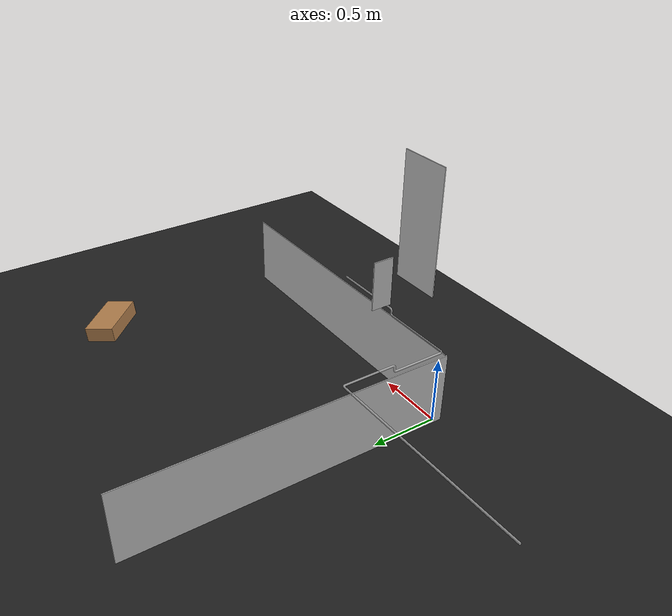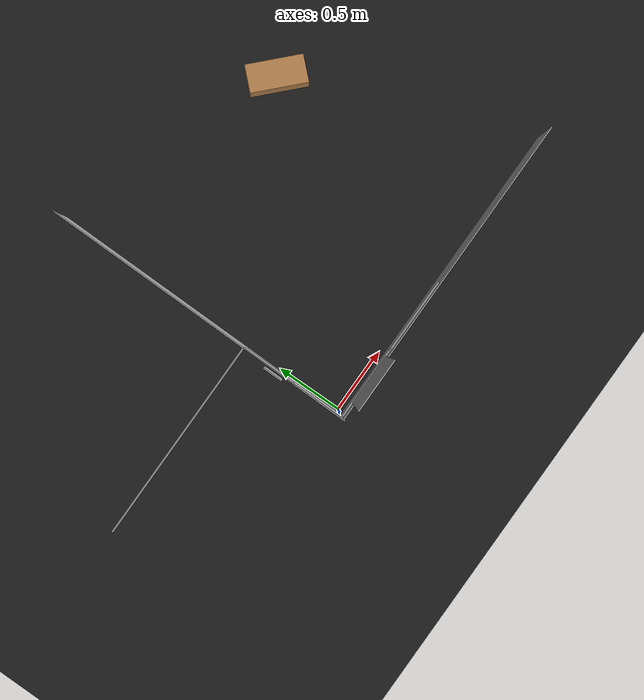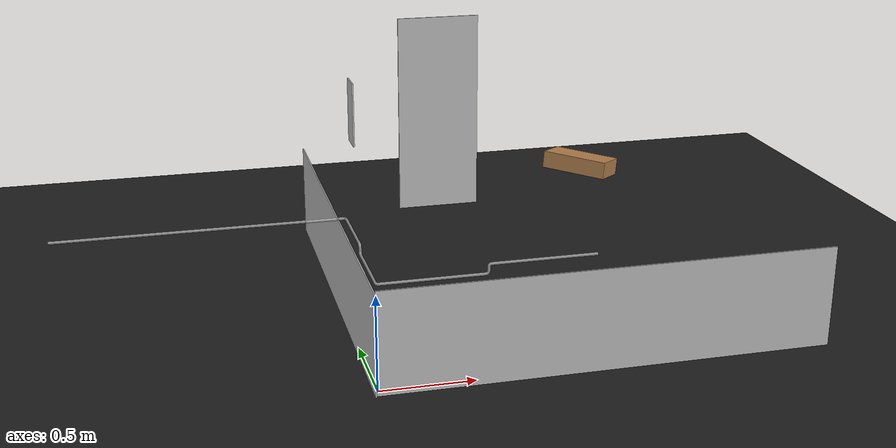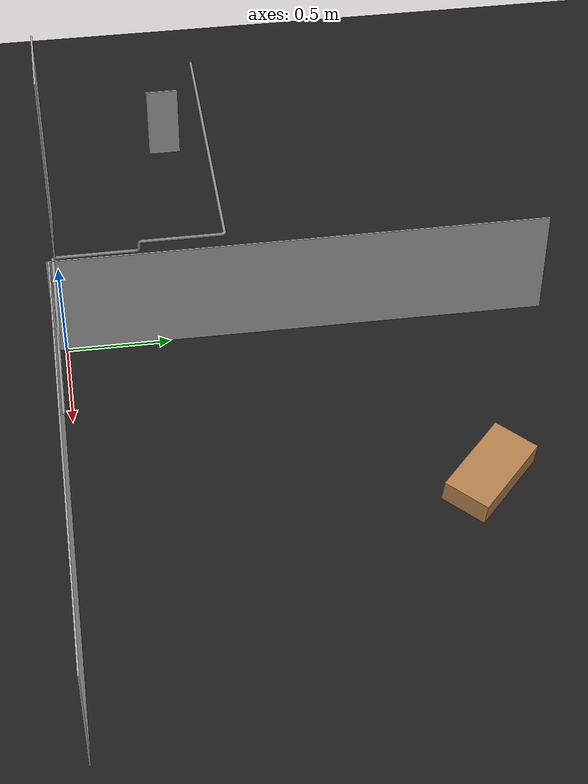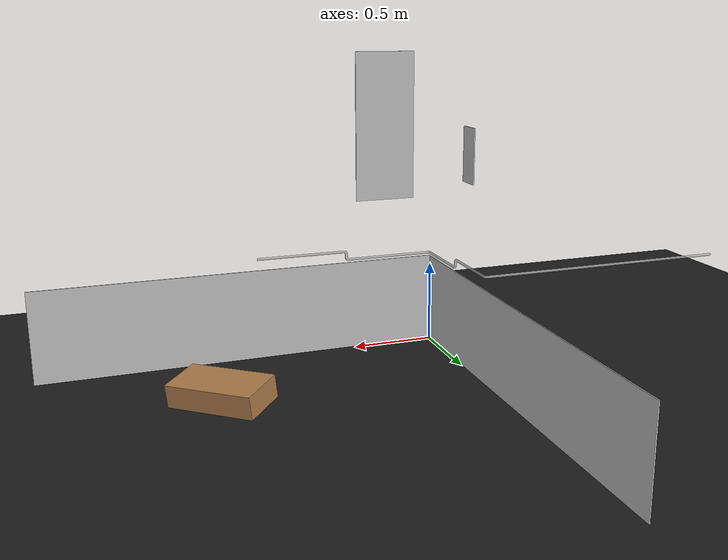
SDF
<sdf version="1.4">
 <world name="default">
  <light name="sun" type="directional">
   <pose>-1 -1 1.5 0 -0 0</pose>
   <diffuse>0.8 0.8 0.8 1</diffuse>
   <specular>0.2 0.2 0.2 1</specular>
   <attenuation>
    <range>1000</range>
    <constant>0.9</constant>
    <linear>0.01</linear>
    <quadratic>0.001</quadratic>
   </attenuation>
   <direction>-0.5 0 -1</direction>
  </light>
  <model name="ground_plane">
   <static>1</static>
   <link name="link">
    <collision name="collision">
     <geometry><plane><normal>0 0 1</normal><size>100 100</size></plane></geometry>
     <surface><friction><ode><mu>100</mu><mu2>50</mu2></ode></friction></surface>
    </collision>
    <visual name="visual">
     <cast_shadows>0</cast_shadows>
     <geometry><plane><normal>0 0 1</normal><size>100 100</size></plane></geometry>
     <material>
      <script><uri>file://media/materials/scripts/gazebo.material</uri><name>Gazebo/Black</name></script>
     </material>
    </visual>
    <velocity_decay><linear>0</linear><angular>0</angular></velocity_decay>
    <gravity>0</gravity>
   </link>
  </model>
  <physics type="ode">
   <max_step_size>0.1</max_step_size>
   <real_time_factor>1</real_time_factor>
   <real_time_update_rate>10</real_time_update_rate>
   <max_contacts>3</max_contacts>
   <gravity>0 0 -9.8</gravity>
   <ode><solver><min_step_size>0.1</min_step_size><iters>1</iters></solver></ode>
  </physics>
  <scene><ambient>1 1 1 1</ambient><background>0 0 0 1</background><shadows>1</shadows></scene>
  <model name="fire_hose_reel">
   <static>1</static>
   <link name="link">
    <visual name="visual">
     <geometry><box><size>0.8815 0.366 0.007</size></box></geometry>
     <material>
      <script>
       <uri>model://fire_hose_reel/materials/scripts</uri>
       <uri>model://fire_hose_reel/materials/textures</uri>
       <name>fire_hose_reel</name>
      </script>
     </material>
    </visual>
    <velocity_decay><linear>0</linear><angular>0</angular></velocity_decay>
    <gravity>0</gravity>
   </link>
   <pose>0.304431 0.000289 1.3728 -3.12259 -1.57079 1.55207</pose>
  </model>
  <model name="fire_extinguisher_drawing">
   <pose>-0.006369 0.524156 1.25872 -0.000425 -1.5707 -3.1415</pose>
   <static>1</static>
   <link name="link">
    <visual name="visual">
     <cast_shadows>0</cast_shadows>
     <geometry><box><size>0.315 0.135 0.007</size></box></geometry>
     <material>
      <script>
       <uri>model://fire_extinguisher_drawing/materials/scripts</uri>
       <uri>model://fire_extinguisher_drawing/materials/textures</uri>
       <name>fire_extinguisher_drawing</name>
      </script>
     </material>
    </visual>
    <velocity_decay><linear>0</linear><angular>0</angular></velocity_decay>
   </link>
  </model>
  <model name="wall_pipe">
   <pose>-1.50237 0.787872 0.626307 -1.5707 5.55112e-17 -1.5707</pose>
   <static>1</static>
   <link name="link">
    <inertial><mass>10</mass></inertial>
    <visual name="visual">
     <transparency>0.2</transparency>
     <geometry><mesh><uri>model://wall_pipe/meshes/wall_pipe.stl</uri></mesh></geometry>
    </visual>
    <velocity_decay><linear>0</linear><angular>0</angular></velocity_decay>
   </link>
  </model>
  <spherical_coordinates>
   <surface_model>EARTH_WGS84</surface_model>
   <latitude_deg>0</latitude_deg>
   <longitude_deg>0</longitude_deg>
   <elevation>0</elevation>
   <heading_deg>0</heading_deg>
  </spherical_coordinates>
  <model name="dot_grid_0">
   <static>1</static>
   <link name="link">
    <visual name="visual">
     <cast_shadows>0</cast_shadows>
     <geometry><box><size>2.4 0.6 0.007</size></box></geometry>
     <material>
      <script>
       <uri>model://dot_grid/materials/scripts</uri>
       <uri>model://dot_grid/materials/textures</uri>
       <name>dot_grid</name>
      </script>
     </material>
    </visual>
    <velocity_decay><linear>0</linear><angular>0</angular></velocity_decay>
   </link>
   <pose>-0.009576 1.14524 0.240414 -1.57079 -0.001496 1.56463</pose>
  </model>
  <model name="dot_grid_2">
   <static>1</static>
   <link name="link">
    <visual name="visual">
     <cast_shadows>0</cast_shadows>
     <geometry><box><size>2.4 0.6 0.007</size></box></geometry>
     <material>
      <script>
       <uri>model://dot_grid/materials/scripts</uri>
       <uri>model://dot_grid/materials/textures</uri>
       <name>dot_grid</name>
      </script>
     </material>
    </visual>
    <velocity_decay><linear>0</linear><angular>0</angular></velocity_decay>
   </link>
   <pose>1.18939 -0.039532 0.244232 -1.56858 0 0</pose>
  </model>
  <model name="camera_projection_mapping">
   <link name="projector_link">
    <inertial>
     <mass>1</mass>
     <inertia><ixx>0.1</ixx><ixy>0</ixy><ixz>0</ixz><iyy>0.1</iyy><iyz>0</iyz><izz>0.1</izz></inertia>
    </inertial>
    <visual name="projector_link_visual">
     <geometry><box><size>0.2 0.1 0.4</size></box></geometry>
     <material><script><name>Gazebo/Wood</name><uri>__default__</uri></script></material>
    </visual>
    <velocity_decay><linear>0</linear><angular>0</angular></velocity_decay>
    <sensor name="virtual_camera" type="camera">
     <camera name="projector_head">
      <horizontal_fov>0.812196</horizontal_fov>
      <image><width>1280</width><height>800</height><format>R8G8B8</format></image>
      <clip><near>0.05</near><far>25</far></clip>
      <noise><type>gaussian</type><mean>0</mean><stddev>0</stddev></noise>
     </camera>
     <plugin name="camera_controller" filename="libgazebo_ros_camera.so">
      <alwaysOn>true</alwaysOn>
      <updateRate>30.0</updateRate>
      <cameraName>virtual_camera</cameraName>
      <imageTopicName>image_raw</imageTopicName>
      <cameraInfoTopicName>camera_info</cameraInfoTopicName>
      <frameName>camera_link</frameName>
      <CxPrime>644</CxPrime>
      <Cx>644</Cx>
      <Cy>630</Cy>
      <focalLength>389</focalLength>
      <hackBaseline>0.07</hackBaseline>
      <distortionK1>0</distortionK1>
      <distortionK2>0</distortionK2>
      <distortionK3>0</distortionK3>
      <distortionT1>0</distortionT1>
      <distortionT2>0</distortionT2>
      <robotNamespace>/</robotNamespace>
     </plugin>
    </sensor>
   </link>
   <static>1</static>
   <pose>1.60351 1.6594 0.536126 -1.61364 -0.116287 -2.32446</pose>
  </model>
 </world>
</sdf>
